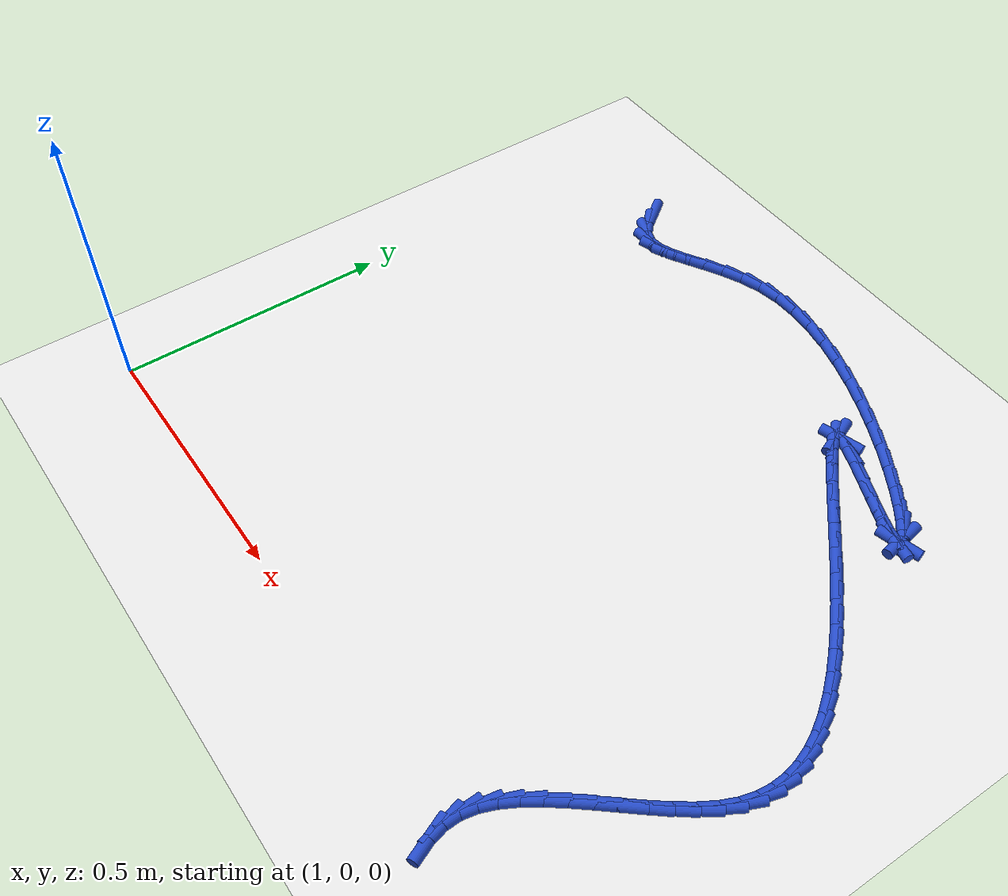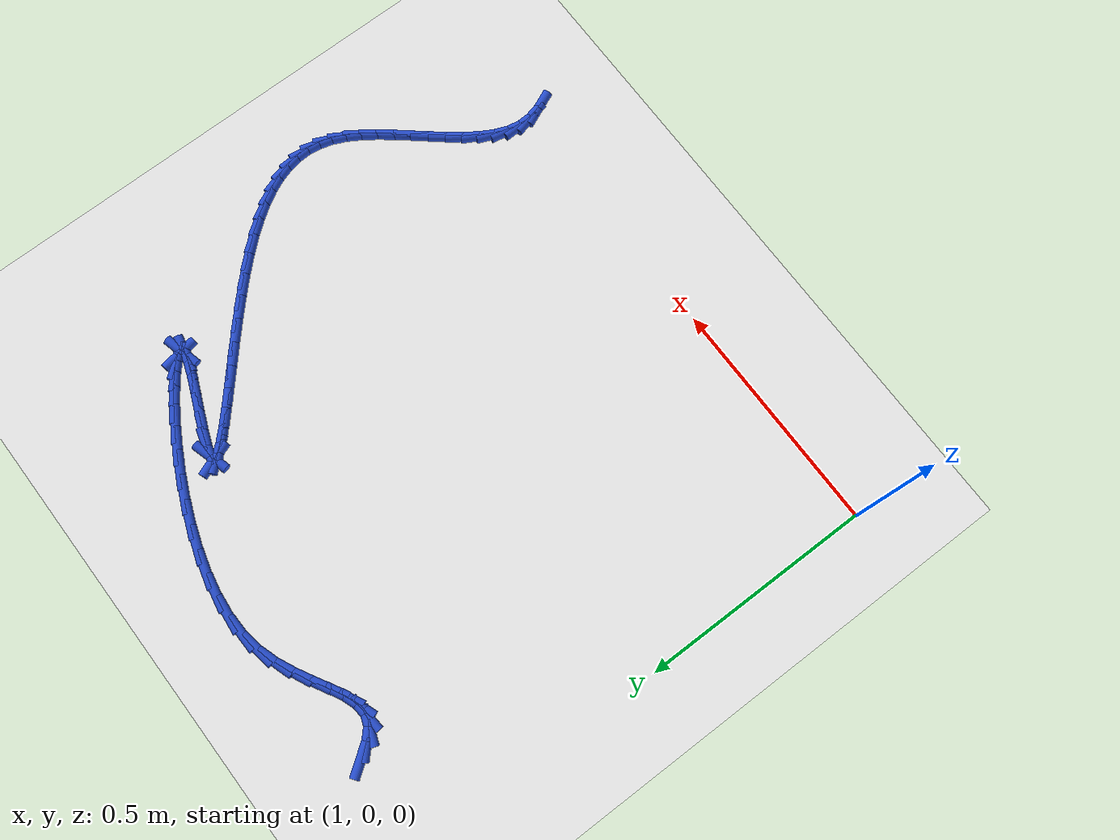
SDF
<sdf version="1.6">
 <world name="default">
  <model name="ground_plane">
   <static>1</static>
   <link name="link">
    <collision name="collision">
     <geometry><plane><normal>0 0 1</normal><size>100 100</size></plane></geometry>
     <surface><friction><ode><mu>100</mu><mu2>50</mu2></ode></friction></surface>
    </collision>
    <visual name="visual">
     <cast_shadows>0</cast_shadows>
     <geometry><plane><normal>0 0 1</normal><size>100 100</size></plane></geometry>
     <material>
      <script><uri>file://media/materials/scripts/gazebo.material</uri><name>Gazebo/WhiteGlow</name></script>
     </material>
    </visual>
   </link>
  </model>
  <model name="line">
   <link name="link_67">
    <pose>1.2067611078545082 1.033358123989123 0.01 0 1.57 -0.9465445864385512</pose>
    <collision name="collision">
     <geometry><cylinder><radius>0.01</radius><length>0.08</length></cylinder></geometry>
    </collision>
    <visual name="visual">
     <material>
      <script><name>Gazebo/Blue</name><uri>file://media/materials/scripts/gazebo.material</uri></script>
     </material>
     <geometry><cylinder><radius>0.01</radius><length>0.08</length></cylinder></geometry>
    </visual>
   </link>
   <link name="link_68">
    <pose>1.225858690586729 1.0068464915648403 0.01 0 1.57 -0.7600534953009594</pose>
    <collision name="collision">
     <geometry><cylinder><radius>0.01</radius><length>0.08</length></cylinder></geometry>
    </collision>
    <visual name="visual">
     <material>
      <script><name>Gazebo/Blue</name><uri>file://media/materials/scripts/gazebo.material</uri></script>
     </material>
     <geometry><cylinder><radius>0.01</radius><length>0.08</length></cylinder></geometry>
    </visual>
   </link>
   <link name="link_69">
    <pose>1.2458282600996473 0.987864351634463 0.01 0 1.57 -0.3537460817427655</pose>
    <collision name="collision">
     <geometry><cylinder><radius>0.01</radius><length>0.08</length></cylinder></geometry>
    </collision>
    <visual name="visual">
     <material>
      <script><name>Gazebo/Blue</name><uri>file://media/materials/scripts/gazebo.material</uri></script>
     </material>
     <geometry><cylinder><radius>0.01</radius><length>0.08</length></cylinder></geometry>
    </visual>
   </link>
   <link name="link_70">
    <pose>1.2675772241700207 0.9798329037707363 0.01 0 1.57 0.0798149576238006</pose>
    <collision name="collision">
     <geometry><cylinder><radius>0.01</radius><length>0.08</length></cylinder></geometry>
    </collision>
    <visual name="visual">
     <material>
      <script><name>Gazebo/Blue</name><uri>file://media/materials/scripts/gazebo.material</uri></script>
     </material>
     <geometry><cylinder><radius>0.01</radius><length>0.08</length></cylinder></geometry>
    </visual>
   </link>
   <link name="link_71">
    <pose>1.2914318188066443 0.9817409105588127 0.01 0 1.57 0.3502315399643494</pose>
    <collision name="collision">
     <geometry><cylinder><radius>0.01</radius><length>0.08</length></cylinder></geometry>
    </collision>
    <visual name="visual">
     <material>
      <script><name>Gazebo/Blue</name><uri>file://media/materials/scripts/gazebo.material</uri></script>
     </material>
     <geometry><cylinder><radius>0.01</radius><length>0.08</length></cylinder></geometry>
    </visual>
   </link>
   <link name="link_72">
    <pose>1.3175483385461255 0.9912810377867015 0.01 0 1.57 0.48025554968265743</pose>
    <collision name="collision">
     <geometry><cylinder><radius>0.01</radius><length>0.08</length></cylinder></geometry>
    </collision>
    <visual name="visual">
     <material>
      <script><name>Gazebo/Blue</name><uri>file://media/materials/scripts/gazebo.material</uri></script>
     </material>
     <geometry><cylinder><radius>0.01</radius><length>0.08</length></cylinder></geometry>
    </visual>
   </link>
   <link name="link_73">
    <pose>1.3460830569537183 1.0061457912996596 0.01 0 1.57 0.5216917624543608</pose>
    <collision name="collision">
     <geometry><cylinder><radius>0.01</radius><length>0.08</length></cylinder></geometry>
    </collision>
    <visual name="visual">
     <material>
      <script><name>Gazebo/Blue</name><uri>file://media/materials/scripts/gazebo.material</uri></script>
     </material>
     <geometry><cylinder><radius>0.01</radius><length>0.08</length></cylinder></geometry>
    </visual>
   </link>
   <link name="link_74">
    <pose>1.3771922475946734 1.024027676942943 0.01 0 1.57 0.5023793213527683</pose>
    <collision name="collision">
     <geometry><cylinder><radius>0.01</radius><length>0.08</length></cylinder></geometry>
    </collision>
    <visual name="visual">
     <material>
      <script><name>Gazebo/Blue</name><uri>file://media/materials/scripts/gazebo.material</uri></script>
     </material>
     <geometry><cylinder><radius>0.01</radius><length>0.08</length></cylinder></geometry>
    </visual>
   </link>
   <link name="link_75">
    <pose>1.411032184034244 1.042619200561809 0.01 0 1.57 0.43336726780103724</pose>
    <collision name="collision">
     <geometry><cylinder><radius>0.01</radius><length>0.08</length></cylinder></geometry>
    </collision>
    <visual name="visual">
     <material>
      <script><name>Gazebo/Blue</name><uri>file://media/materials/scripts/gazebo.material</uri></script>
     </material>
     <geometry><cylinder><radius>0.01</radius><length>0.08</length></cylinder></geometry>
    </visual>
   </link>
   <link name="link_76">
    <pose>1.4477591398376823 1.059612868001513 0.01 0 1.57 0.3179341001916274</pose>
    <collision name="collision">
     <geometry><cylinder><radius>0.01</radius><length>0.08</length></cylinder></geometry>
    </collision>
    <visual name="visual">
     <material>
      <script><name>Gazebo/Blue</name><uri>file://media/materials/scripts/gazebo.material</uri></script>
     </material>
     <geometry><cylinder><radius>0.01</radius><length>0.08</length></cylinder></geometry>
    </visual>
   </link>
   <link name="link_77">
    <pose>1.4875293885702408 1.0727011851073125 0.01 0 1.57 0.1632786894948163</pose>
    <collision name="collision">
     <geometry><cylinder><radius>0.01</radius><length>0.08</length></cylinder></geometry>
    </collision>
    <visual name="visual">
     <material>
      <script><name>Gazebo/Blue</name><uri>file://media/materials/scripts/gazebo.material</uri></script>
     </material>
     <geometry><cylinder><radius>0.01</radius><length>0.08</length></cylinder></geometry>
    </visual>
   </link>
   <link name="link_78">
    <pose>1.5304401018681406 1.0797705247820657 0.01 0 1.57 0.017157606060357683</pose>
    <collision name="collision">
     <geometry><cylinder><radius>0.01</radius><length>0.08</length></cylinder></geometry>
    </collision>
    <visual name="visual">
     <material>
      <script><name>Gazebo/Blue</name><uri>file://media/materials/scripts/gazebo.material</uri></script>
     </material>
     <geometry><cylinder><radius>0.01</radius><length>0.08</length></cylinder></geometry>
    </visual>
   </link>
   <link name="link_79">
    <pose>1.5760258408252927 1.080552743692002 0.01 0 1.57 -0.09973049262688012</pose>
    <collision name="collision">
     <geometry><cylinder><radius>0.01</radius><length>0.08</length></cylinder></geometry>
    </collision>
    <visual name="visual">
     <material>
      <script><name>Gazebo/Blue</name><uri>file://media/materials/scripts/gazebo.material</uri></script>
     </material>
     <geometry><cylinder><radius>0.01</radius><length>0.08</length></cylinder></geometry>
    </visual>
   </link>
   <link name="link_80">
    <pose>1.6235096949201488 1.0758013924921106 0.01 0 1.57 -0.1934394493840396</pose>
    <collision name="collision">
     <geometry><cylinder><radius>0.01</radius><length>0.08</length></cylinder></geometry>
    </collision>
    <visual name="visual">
     <material>
      <script><name>Gazebo/Blue</name><uri>file://media/materials/scripts/gazebo.material</uri></script>
     </material>
     <geometry><cylinder><radius>0.01</radius><length>0.08</length></cylinder></geometry>
    </visual>
   </link>
   <link name="link_81">
    <pose>1.6721114529713472 1.0662808487125188 0.01 0 1.57 -0.2696387362456919</pose>
    <collision name="collision">
     <geometry><cylinder><radius>0.01</radius><length>0.08</length></cylinder></geometry>
    </collision>
    <visual name="visual">
     <material>
      <script><name>Gazebo/Blue</name><uri>file://media/materials/scripts/gazebo.material</uri></script>
     </material>
     <geometry><cylinder><radius>0.01</radius><length>0.08</length></cylinder></geometry>
    </visual>
   </link>
   <link name="link_82">
    <pose>1.7210509037975263 1.052755489883352 0.01 0 1.57 -0.3328464531535941</pose>
    <collision name="collision">
     <geometry><cylinder><radius>0.01</radius><length>0.08</length></cylinder></geometry>
    </collision>
    <visual name="visual">
     <material>
      <script><name>Gazebo/Blue</name><uri>file://media/materials/scripts/gazebo.material</uri></script>
     </material>
     <geometry><cylinder><radius>0.01</radius><length>0.08</length></cylinder></geometry>
    </visual>
   </link>
   <link name="link_83">
    <pose>1.7695478362173225 1.0359896935347366 0.01 0 1.57 -0.38654904492334824</pose>
    <collision name="collision">
     <geometry><cylinder><radius>0.01</radius><length>0.08</length></cylinder></geometry>
    </collision>
    <visual name="visual">
     <material>
      <script><name>Gazebo/Blue</name><uri>file://media/materials/scripts/gazebo.material</uri></script>
     </material>
     <geometry><cylinder><radius>0.01</radius><length>0.08</length></cylinder></geometry>
    </visual>
   </link>
   <link name="link_84">
    <pose>1.816822039049374 1.0167478371967995 0.01 0 1.57 -0.43348363728287115</pose>
    <collision name="collision">
     <geometry><cylinder><radius>0.01</radius><length>0.08</length></cylinder></geometry>
    </collision>
    <visual name="visual">
     <material>
      <script><name>Gazebo/Blue</name><uri>file://media/materials/scripts/gazebo.material</uri></script>
     </material>
     <geometry><cylinder><radius>0.01</radius><length>0.08</length></cylinder></geometry>
    </visual>
   </link>
   <link name="link_85">
    <pose>1.862093301112319 0.9957942983996669 0.01 0 1.57 -0.47593753497241514</pose>
    <collision name="collision">
     <geometry><cylinder><radius>0.01</radius><length>0.08</length></cylinder></geometry>
    </collision>
    <visual name="visual">
     <material>
      <script><name>Gazebo/Blue</name><uri>file://media/materials/scripts/gazebo.material</uri></script>
     </material>
     <geometry><cylinder><radius>0.01</radius><length>0.08</length></cylinder></geometry>
    </visual>
   </link>
   <link name="link_86">
    <pose>1.9045814112247956 0.9738934546734649 0.01 0 1.57 -0.5160625197754991</pose>
    <collision name="collision">
     <geometry><cylinder><radius>0.01</radius><length>0.08</length></cylinder></geometry>
    </collision>
    <visual name="visual">
     <material>
      <script><name>Gazebo/Blue</name><uri>file://media/materials/scripts/gazebo.material</uri></script>
     </material>
     <geometry><cylinder><radius>0.01</radius><length>0.08</length></cylinder></geometry>
    </visual>
   </link>
   <link name="link_87">
    <pose>1.943506158205442 0.9518096835483196 0.01 0 1.57 -0.5562896226902618</pose>
    <collision name="collision">
     <geometry><cylinder><radius>0.01</radius><length>0.08</length></cylinder></geometry>
    </collision>
    <visual name="visual">
     <material>
      <script><name>Gazebo/Blue</name><uri>file://media/materials/scripts/gazebo.material</uri></script>
     </material>
     <geometry><cylinder><radius>0.01</radius><length>0.08</length></cylinder></geometry>
    </visual>
   </link>
   <link name="link_88">
    <pose>1.9780873308728955 0.9303073625543583 0.01 0 1.57 -0.6000834849711446</pose>
    <collision name="collision">
     <geometry><cylinder><radius>0.01</radius><length>0.08</length></cylinder></geometry>
    </collision>
    <visual name="visual">
     <material>
      <script><name>Gazebo/Blue</name><uri>file://media/materials/scripts/gazebo.material</uri></script>
     </material>
     <geometry><cylinder><radius>0.01</radius><length>0.08</length></cylinder></geometry>
    </visual>
   </link>
   <link name="link_89">
    <pose>2.0075447180457937 0.9101508692217067 0.01 0 1.57 -0.6537801948910908</pose>
    <collision name="collision">
     <geometry><cylinder><radius>0.01</radius><length>0.08</length></cylinder></geometry>
    </collision>
    <visual name="visual">
     <material>
      <script><name>Gazebo/Blue</name><uri>file://media/materials/scripts/gazebo.material</uri></script>
     </material>
     <geometry><cylinder><radius>0.01</radius><length>0.08</length></cylinder></geometry>
    </visual>
   </link>
   <link name="link_90">
    <pose>2.0310981085427753 0.8921045810804913 0.01 0 1.57 -0.7324691755194301</pose>
    <collision name="collision">
     <geometry><cylinder><radius>0.01</radius><length>0.08</length></cylinder></geometry>
    </collision>
    <visual name="visual">
     <material>
      <script><name>Gazebo/Blue</name><uri>file://media/materials/scripts/gazebo.material</uri></script>
     </material>
     <geometry><cylinder><radius>0.01</radius><length>0.08</length></cylinder></geometry>
    </visual>
   </link>
   <link name="link_91">
    <pose>2.047967291182478 0.8769328756608381 0.01 0 1.57 -0.8866852633292297</pose>
    <collision name="collision">
     <geometry><cylinder><radius>0.01</radius><length>0.08</length></cylinder></geometry>
    </collision>
    <visual name="visual">
     <material>
      <script><name>Gazebo/Blue</name><uri>file://media/materials/scripts/gazebo.material</uri></script>
     </material>
     <geometry><cylinder><radius>0.01</radius><length>0.08</length></cylinder></geometry>
    </visual>
   </link>
   <link name="link_92">
    <pose>2.0573720547835395 0.8654001304928742 0.01 0 1.57 -1.4094851415332712</pose>
    <collision name="collision">
     <geometry><cylinder><radius>0.01</radius><length>0.08</length></cylinder></geometry>
    </collision>
    <visual name="visual">
     <material>
      <script><name>Gazebo/Blue</name><uri>file://media/materials/scripts/gazebo.material</uri></script>
     </material>
     <geometry><cylinder><radius>0.01</radius><length>0.08</length></cylinder></geometry>
    </visual>
   </link>
   <link name="link_93">
    <pose>2.0585321881645973 0.8582707231067255 0.01 0 1.57 0.24444187556262414</pose>
    <collision name="collision">
     <geometry><cylinder><radius>0.01</radius><length>0.08</length></cylinder></geometry>
    </collision>
    <visual name="visual">
     <material>
      <script><name>Gazebo/Blue</name><uri>file://media/materials/scripts/gazebo.material</uri></script>
     </material>
     <geometry><cylinder><radius>0.01</radius><length>0.08</length></cylinder></geometry>
    </visual>
   </link>
   <link name="link_94">
    <pose>2.0506674801442903 0.8563090310325188 0.01 0 1.57 -0.22102917914361375</pose>
    <collision name="collision">
     <geometry><cylinder><radius>0.01</radius><length>0.08</length></cylinder></geometry>
    </collision>
    <visual name="visual">
     <material>
      <script><name>Gazebo/Blue</name><uri>file://media/materials/scripts/gazebo.material</uri></script>
     </material>
     <geometry><cylinder><radius>0.01</radius><length>0.08</length></cylinder></geometry>
    </visual>
   </link>
   <link name="link_95">
    <pose>2.0329977195453632 0.8602794317975283 0.01 0 1.57 -0.3529485117211044</pose>
    <collision name="collision">
     <geometry><cylinder><radius>0.01</radius><length>0.08</length></cylinder></geometry>
    </collision>
    <visual name="visual">
     <material>
      <script><name>Gazebo/Blue</name><uri>file://media/materials/scripts/gazebo.material</uri></script>
     </material>
     <geometry><cylinder><radius>0.01</radius><length>0.08</length></cylinder></geometry>
    </visual>
   </link>
   <link name="link_96">
    <pose>2.005536131628062 0.8703955528686829 0.01 0 1.57 -0.39685641079395584</pose>
    <collision name="collision">
     <geometry><cylinder><radius>0.01</radius><length>0.08</length></cylinder></geometry>
    </collision>
    <visual name="visual">
     <material>
      <script><name>Gazebo/Blue</name><uri>file://media/materials/scripts/gazebo.material</uri></script>
     </material>
     <geometry><cylinder><radius>0.01</radius><length>0.08</length></cylinder></geometry>
    </visual>
   </link>
   <link name="link_97">
    <pose>1.9714532305381616 0.8846794447168798 0.01 0 1.57 -0.4090068537105748</pose>
    <collision name="collision">
     <geometry><cylinder><radius>0.01</radius><length>0.08</length></cylinder></geometry>
    </collision>
    <visual name="visual">
     <material>
      <script><name>Gazebo/Blue</name><uri>file://media/materials/scripts/gazebo.material</uri></script>
     </material>
     <geometry><cylinder><radius>0.01</radius><length>0.08</length></cylinder></geometry>
    </visual>
   </link>
   <link name="link_98">
    <pose>1.9347047597378095 0.9006081045826113 0.01 0 1.57 -0.4014083073037634</pose>
    <collision name="collision">
     <geometry><cylinder><radius>0.01</radius><length>0.08</length></cylinder></geometry>
    </collision>
    <visual name="visual">
     <material>
      <script><name>Gazebo/Blue</name><uri>file://media/materials/scripts/gazebo.material</uri></script>
     </material>
     <geometry><cylinder><radius>0.01</radius><length>0.08</length></cylinder></geometry>
    </visual>
   </link>
   <link name="link_99">
    <pose>1.8992464626891585 0.915658529706371 0.01 0 1.57 -0.3680109381897119</pose>
    <collision name="collision">
     <geometry><cylinder><radius>0.01</radius><length>0.08</length></cylinder></geometry>
    </collision>
    <visual name="visual">
     <material>
      <script><name>Gazebo/Blue</name><uri>file://media/materials/scripts/gazebo.material</uri></script>
     </material>
     <geometry><cylinder><radius>0.01</radius><length>0.08</length></cylinder></geometry>
    </visual>
   </link>
   <link name="link_100">
    <pose>1.8690340828543561 0.927307717328651 0.01 0 1.57 -0.2660195151744341</pose>
    <collision name="collision">
     <geometry><cylinder><radius>0.01</radius><length>0.08</length></cylinder></geometry>
    </collision>
    <visual name="visual">
     <material>
      <script><name>Gazebo/Blue</name><uri>file://media/materials/scripts/gazebo.material</uri></script>
     </material>
     <geometry><cylinder><radius>0.01</radius><length>0.08</length></cylinder></geometry>
    </visual>
   </link>
   <link name="link_101">
    <pose>1.8480233636955532 0.9330326646899436 0.01 0 1.57 0.2801031239207087</pose>
    <collision name="collision">
     <geometry><cylinder><radius>0.01</radius><length>0.08</length></cylinder></geometry>
    </collision>
    <visual name="visual">
     <material>
      <script><name>Gazebo/Blue</name><uri>file://media/materials/scripts/gazebo.material</uri></script>
     </material>
     <geometry><cylinder><radius>0.01</radius><length>0.08</length></cylinder></geometry>
    </visual>
   </link>
   <link name="link_102">
    <pose>1.8396658897334848 0.9306285037520513 0.01 0 1.57 -1.2015607068183103</pose>
    <collision name="collision">
     <geometry><cylinder><radius>0.01</radius><length>0.08</length></cylinder></geometry>
    </collision>
    <visual name="visual">
     <material>
      <script><name>Gazebo/Blue</name><uri>file://media/materials/scripts/gazebo.material</uri></script>
     </material>
     <geometry><cylinder><radius>0.01</radius><length>0.08</length></cylinder></geometry>
    </visual>
   </link>
   <link name="link_103">
    <pose>1.8436849034186529 0.9202430274493812 0.01 0 1.57 -0.8711445451062044</pose>
    <collision name="collision">
     <geometry><cylinder><radius>0.01</radius><length>0.08</length></cylinder></geometry>
    </collision>
    <visual name="visual">
     <material>
      <script><name>Gazebo/Blue</name><uri>file://media/materials/scripts/gazebo.material</uri></script>
     </material>
     <geometry><cylinder><radius>0.01</radius><length>0.08</length></cylinder></geometry>
    </visual>
   </link>
   <link name="link_104">
    <pose>1.8581316958076495 0.9030790646326948 0.01 0 1.57 -0.7813825399751269</pose>
    <collision name="collision">
     <geometry><cylinder><radius>0.01</radius><length>0.08</length></cylinder></geometry>
    </collision>
    <visual name="visual">
     <material>
      <script><name>Gazebo/Blue</name><uri>file://media/materials/scripts/gazebo.material</uri></script>
     </material>
     <geometry><cylinder><radius>0.01</radius><length>0.08</length></cylinder></geometry>
    </visual>
   </link>
   <link name="link_105">
    <pose>1.8810496521423157 0.880344432885405 0.01 0 1.57 -0.744115724558868</pose>
    <collision name="collision">
     <geometry><cylinder><radius>0.01</radius><length>0.08</length></cylinder></geometry>
    </collision>
    <visual name="visual">
     <material>
      <script><name>Gazebo/Blue</name><uri>file://media/materials/scripts/gazebo.material</uri></script>
     </material>
     <geometry><cylinder><radius>0.01</radius><length>0.08</length></cylinder></geometry>
    </visual>
   </link>
   <link name="link_106">
    <pose>1.9104821576644944 0.8532469497909241 0.01 0 1.57 -0.7272795196205392</pose>
    <collision name="collision">
     <geometry><cylinder><radius>0.01</radius><length>0.08</length></cylinder></geometry>
    </collision>
    <visual name="visual">
     <material>
      <script><name>Gazebo/Blue</name><uri>file://media/materials/scripts/gazebo.material</uri></script>
     </material>
     <geometry><cylinder><radius>0.01</radius><length>0.08</length></cylinder></geometry>
    </visual>
   </link>
   <link name="link_107">
    <pose>1.944472597616027 0.8229944329326642 0.01 0 1.57 -0.721639211436359</pose>
    <collision name="collision">
     <geometry><cylinder><radius>0.01</radius><length>0.08</length></cylinder></geometry>
    </collision>
    <visual name="visual">
     <material>
      <script><name>Gazebo/Blue</name><uri>file://media/materials/scripts/gazebo.material</uri></script>
     </material>
     <geometry><cylinder><radius>0.01</radius><length>0.08</length></cylinder></geometry>
    </visual>
   </link>
   <link name="link_108">
    <pose>1.9810643572387545 0.790794699894038 0.01 0 1.57 -0.7242376804115852</pose>
    <collision name="collision">
     <geometry><cylinder><radius>0.01</radius><length>0.08</length></cylinder></geometry>
    </collision>
    <visual name="visual">
     <material>
      <script><name>Gazebo/Blue</name><uri>file://media/materials/scripts/gazebo.material</uri></script>
     </material>
     <geometry><cylinder><radius>0.01</radius><length>0.08</length></cylinder></geometry>
    </visual>
   </link>
   <link name="link_109">
    <pose>2.0183008217745195 0.7578555682584567 0.01 0 1.57 -0.7347921937396783</pose>
    <collision name="collision">
     <geometry><cylinder><radius>0.01</radius><length>0.08</length></cylinder></geometry>
    </collision>
    <visual name="visual">
     <material>
      <script><name>Gazebo/Blue</name><uri>file://media/materials/scripts/gazebo.material</uri></script>
     </material>
     <geometry><cylinder><radius>0.01</radius><length>0.08</length></cylinder></geometry>
    </visual>
   </link>
   <link name="link_110">
    <pose>2.0542823744322067 0.7253431798769426 0.01 0 1.57 -0.7523948803820598</pose>
    <collision name="collision">
     <geometry><cylinder><radius>0.01</radius><length>0.08</length></cylinder></geometry>
    </collision>
    <visual name="visual">
     <material>
      <script><name>Gazebo/Blue</name><uri>file://media/materials/scripts/gazebo.material</uri></script>
     </material>
     <geometry><cylinder><radius>0.01</radius><length>0.08</length></cylinder></geometry>
    </visual>
   </link>
   <link name="link_111">
    <pose>2.0880405292414888 0.6937428530392217 0.01 0 1.57 -0.7762595078056281</pose>
    <collision name="collision">
     <geometry><cylinder><radius>0.01</radius><length>0.08</length></cylinder></geometry>
    </collision>
    <visual name="visual">
     <material>
      <script><name>Gazebo/Blue</name><uri>file://media/materials/scripts/gazebo.material</uri></script>
     </material>
     <geometry><cylinder><radius>0.01</radius><length>0.08</length></cylinder></geometry>
    </visual>
   </link>
   <link name="link_112">
    <pose>2.1193658544161895 0.6629849013446656 0.01 0 1.57 -0.8074746978622448</pose>
    <collision name="collision">
     <geometry><cylinder><radius>0.01</radius><length>0.08</length></cylinder></geometry>
    </collision>
    <visual name="visual">
     <material>
      <script><name>Gazebo/Blue</name><uri>file://media/materials/scripts/gazebo.material</uri></script>
     </material>
     <geometry><cylinder><radius>0.01</radius><length>0.08</length></cylinder></geometry>
    </visual>
   </link>
   <link name="link_113">
    <pose>2.148071049773217 0.6329834562230834 0.01 0 1.57 -0.847478896991998</pose>
    <collision name="collision">
     <geometry><cylinder><radius>0.01</radius><length>0.08</length></cylinder></geometry>
    </collision>
    <visual name="visual">
     <material>
      <script><name>Gazebo/Blue</name><uri>file://media/materials/scripts/gazebo.material</uri></script>
     </material>
     <geometry><cylinder><radius>0.01</radius><length>0.08</length></cylinder></geometry>
    </visual>
   </link>
   <link name="link_114">
    <pose>2.1739688151294763 0.6036526491042846 0.01 0 1.57 -0.8980481168767065</pose>
    <collision name="collision">
     <geometry><cylinder><radius>0.01</radius><length>0.08</length></cylinder></geometry>
    </collision>
    <visual name="visual">
     <material>
      <script><name>Gazebo/Blue</name><uri>file://media/materials/scripts/gazebo.material</uri></script>
     </material>
     <geometry><cylinder><radius>0.01</radius><length>0.08</length></cylinder></geometry>
    </visual>
   </link>
   <link name="link_115">
    <pose>2.1968718503018767 0.5749066114180786 0.01 0 1.57 -0.9613067160228799</pose>
    <collision name="collision">
     <geometry><cylinder><radius>0.01</radius><length>0.08</length></cylinder></geometry>
    </collision>
    <visual name="visual">
     <material>
      <script><name>Gazebo/Blue</name><uri>file://media/materials/scripts/gazebo.material</uri></script>
     </material>
     <geometry><cylinder><radius>0.01</radius><length>0.08</length></cylinder></geometry>
    </visual>
   </link>
   <link name="link_116">
    <pose>2.216592855107324 0.5466594745942738 0.01 0 1.57 -1.0396417348257783</pose>
    <collision name="collision">
     <geometry><cylinder><radius>0.01</radius><length>0.08</length></cylinder></geometry>
    </collision>
    <visual name="visual">
     <material>
      <script><name>Gazebo/Blue</name><uri>file://media/materials/scripts/gazebo.material</uri></script>
     </material>
     <geometry><cylinder><radius>0.01</radius><length>0.08</length></cylinder></geometry>
    </visual>
   </link>
   <link name="link_117">
    <pose>2.232944529362725 0.5188253700626787 0.01 0 1.57 -1.135409649760142</pose>
    <collision name="collision">
     <geometry><cylinder><radius>0.01</radius><length>0.08</length></cylinder></geometry>
    </collision>
    <visual name="visual">
     <material>
      <script><name>Gazebo/Blue</name><uri>file://media/materials/scripts/gazebo.material</uri></script>
     </material>
     <geometry><cylinder><radius>0.01</radius><length>0.08</length></cylinder></geometry>
    </visual>
   </link>
   <link name="link_118">
    <pose>2.245739572884987 0.4913184292531038 0.01 0 1.57 -1.250281988067868</pose>
    <collision name="collision">
     <geometry><cylinder><radius>0.01</radius><length>0.08</length></cylinder></geometry>
    </collision>
    <visual name="visual">
     <material>
      <script><name>Gazebo/Blue</name><uri>file://media/materials/scripts/gazebo.material</uri></script>
     </material>
     <geometry><cylinder><radius>0.01</radius><length>0.08</length></cylinder></geometry>
    </visual>
   </link>
   <link name="link_119">
    <pose>2.2547906854910176 0.46405278359535745 0.01 0 1.57 -1.3841403913518013</pose>
    <collision name="collision">
     <geometry><cylinder><radius>0.01</radius><length>0.08</length></cylinder></geometry>
    </collision>
    <visual name="visual">
     <material>
      <script><name>Gazebo/Blue</name><uri>file://media/materials/scripts/gazebo.material</uri></script>
     </material>
     <geometry><cylinder><radius>0.01</radius><length>0.08</length></cylinder></geometry>
    </visual>
   </link>
   <link name="link_120">
    <pose>2.2599105669977226 0.43694256451924857 0.01 0 1.57 -1.53378196254658</pose>
    <collision name="collision">
     <geometry><cylinder><radius>0.01</radius><length>0.08</length></cylinder></geometry>
    </collision>
    <visual name="visual">
     <material>
      <script><name>Gazebo/Blue</name><uri>file://media/materials/scripts/gazebo.material</uri></script>
     </material>
     <geometry><cylinder><radius>0.01</radius><length>0.08</length></cylinder></geometry>
    </visual>
   </link>
   <link name="link_121">
    <pose>2.260911917222011 0.40990190345458655 0.01 0 1.57 1.449267685183993</pose>
    <collision name="collision">
     <geometry><cylinder><radius>0.01</radius><length>0.08</length></cylinder></geometry>
    </collision>
    <visual name="visual">
     <material>
      <script><name>Gazebo/Blue</name><uri>file://media/materials/scripts/gazebo.material</uri></script>
     </material>
     <geometry><cylinder><radius>0.01</radius><length>0.08</length></cylinder></geometry>
    </visual>
   </link>
   <link name="link_122">
    <pose>2.2576074359807876 0.38284493183117974 0.01 0 1.57 1.2912084975322835</pose>
    <collision name="collision">
     <geometry><cylinder><radius>0.01</radius><length>0.08</length></cylinder></geometry>
    </collision>
    <visual name="visual">
     <material>
      <script><name>Gazebo/Blue</name><uri>file://media/materials/scripts/gazebo.material</uri></script>
     </material>
     <geometry><cylinder><radius>0.01</radius><length>0.08</length></cylinder></geometry>
    </visual>
   </link>
   <link name="link_123">
    <pose>2.2498098230909602 0.35568578107883797 0.01 0 1.57 1.1450297978765434</pose>
    <collision name="collision">
     <geometry><cylinder><radius>0.01</radius><length>0.08</length></cylinder></geometry>
    </collision>
    <visual name="visual">
     <material>
      <script><name>Gazebo/Blue</name><uri>file://media/materials/scripts/gazebo.material</uri></script>
     </material>
     <geometry><cylinder><radius>0.01</radius><length>0.08</length></cylinder></geometry>
    </visual>
   </link>
   <link name="link_124">
    <pose>2.2374120009756524 0.32834811747883474 0.01 0 1.57 1.0327837691851314</pose>
    <collision name="collision">
     <geometry><cylinder><radius>0.01</radius><length>0.08</length></cylinder></geometry>
    </collision>
    <visual name="visual">
     <material>
      <script><name>Gazebo/Blue</name><uri>file://media/materials/scripts/gazebo.material</uri></script>
     </material>
     <geometry><cylinder><radius>0.01</radius><length>0.08</length></cylinder></geometry>
    </visual>
   </link>
   <link name="link_125">
    <pose>2.2209955284341003 0.300837455134012 0.01 0 1.57 0.9562562717982085</pose>
    <collision name="collision">
     <geometry><cylinder><radius>0.01</radius><length>0.08</length></cylinder></geometry>
    </collision>
    <visual name="visual">
     <material>
      <script><name>Gazebo/Blue</name><uri>file://media/materials/scripts/gazebo.material</uri></script>
     </material>
     <geometry><cylinder><radius>0.01</radius><length>0.08</length></cylinder></geometry>
    </visual>
   </link>
   <link name="link_126">
    <pose>2.201492511306774 0.2732009723878433 0.01 0 1.57 0.9075374635228005</pose>
    <collision name="collision">
     <geometry><cylinder><radius>0.01</radius><length>0.08</length></cylinder></geometry>
    </collision>
    <visual name="visual">
     <material>
      <script><name>Gazebo/Blue</name><uri>file://media/materials/scripts/gazebo.material</uri></script>
     </material>
     <geometry><cylinder><radius>0.01</radius><length>0.08</length></cylinder></geometry>
    </visual>
   </link>
   <link name="link_127">
    <pose>2.1798378344572997 0.2454861778843791 0.01 0 1.57 0.8813967219815108</pose>
    <collision name="collision">
     <geometry><cylinder><radius>0.01</radius><length>0.08</length></cylinder></geometry>
    </collision>
    <visual name="visual">
     <material>
      <script><name>Gazebo/Blue</name><uri>file://media/materials/scripts/gazebo.material</uri></script>
     </material>
     <geometry><cylinder><radius>0.01</radius><length>0.08</length></cylinder></geometry>
    </visual>
   </link>
   <link name="link_128">
    <pose>2.1569663827493026 0.2177405802676685 0.01 0 1.57 0.875081267297095</pose>
    <collision name="collision">
     <geometry><cylinder><radius>0.01</radius><length>0.08</length></cylinder></geometry>
    </collision>
    <visual name="visual">
     <material>
      <script><name>Gazebo/Blue</name><uri>file://media/materials/scripts/gazebo.material</uri></script>
     </material>
     <geometry><cylinder><radius>0.01</radius><length>0.08</length></cylinder></geometry>
    </visual>
   </link>
   <link name="link_129">
    <pose>2.1338130410464076 0.19001168818176084 0.01 0 1.57 0.8879836258896833</pose>
    <collision name="collision">
     <geometry><cylinder><radius>0.01</radius><length>0.08</length></cylinder></geometry>
    </collision>
    <visual name="visual">
     <material>
      <script><name>Gazebo/Blue</name><uri>file://media/materials/scripts/gazebo.material</uri></script>
     </material>
     <geometry><cylinder><radius>0.01</radius><length>0.08</length></cylinder></geometry>
    </visual>
   </link>
   <link name="link_130">
    <pose>2.1113126942122404 0.16234701027070583 0.01 0 1.57 0.9215652570599303</pose>
    <collision name="collision">
     <geometry><cylinder><radius>0.01</radius><length>0.08</length></cylinder></geometry>
    </collision>
    <visual name="visual">
     <material>
      <script><name>Gazebo/Blue</name><uri>file://media/materials/scripts/gazebo.material</uri></script>
     </material>
     <geometry><cylinder><radius>0.01</radius><length>0.08</length></cylinder></geometry>
    </visual>
   </link>
   <link name="link_131">
    <pose>2.090400227110426 0.1347940551785524 0.01 0 1.57 0.9795854422959629</pose>
    <collision name="collision">
     <geometry><cylinder><radius>0.01</radius><length>0.08</length></cylinder></geometry>
    </collision>
    <visual name="visual">
     <material>
      <script><name>Gazebo/Blue</name><uri>file://media/materials/scripts/gazebo.material</uri></script>
     </material>
     <geometry><cylinder><radius>0.01</radius><length>0.08</length></cylinder></geometry>
    </visual>
   </link>
   <link name="link_132">
    <pose>2.0720105246045892 0.10740033154935096 0.01 0 1.57 1.0685403507830098</pose>
    <collision name="collision">
     <geometry><cylinder><radius>0.01</radius><length>0.08</length></cylinder></geometry>
    </collision>
    <visual name="visual">
     <material>
      <script><name>Gazebo/Blue</name><uri>file://media/materials/scripts/gazebo.material</uri></script>
     </material>
     <geometry><cylinder><radius>0.01</radius><length>0.08</length></cylinder></geometry>
    </visual>
   </link>
   <link name="link_133">
    <pose>2.0570784715583565 0.08021334802715055 0.01 0 1.57 1.197788560871915</pose>
    <collision name="collision">
     <geometry><cylinder><radius>0.01</radius><length>0.08</length></cylinder></geometry>
    </collision>
    <visual name="visual">
     <material>
      <script><name>Gazebo/Blue</name><uri>file://media/materials/scripts/gazebo.material</uri></script>
     </material>
     <geometry><cylinder><radius>0.01</radius><length>0.08</length></cylinder></geometry>
    </visual>
   </link>
   <link name="link_134">
    <pose>2.0465389528353524 0.05328061325600064 0.01 0 1.57 1.377523690177215</pose>
    <collision name="collision">
     <geometry><cylinder><radius>0.01</radius><length>0.08</length></cylinder></geometry>
    </collision>
    <visual name="visual">
     <material>
      <script><name>Gazebo/Blue</name><uri>file://media/materials/scripts/gazebo.material</uri></script>
     </material>
     <geometry><cylinder><radius>0.01</radius><length>0.08</length></cylinder></geometry>
    </visual>
   </link>
   <link name="link_135">
    <pose>2.0413268532992026 0.026649635879950354 0.01 0 1.57 -1.5395846699006217</pose>
    <collision name="collision">
     <geometry><cylinder><radius>0.01</radius><length>0.08</length></cylinder></geometry>
    </collision>
    <visual name="visual">
     <material>
      <script><name>Gazebo/Blue</name><uri>file://media/materials/scripts/gazebo.material</uri></script>
     </material>
     <geometry><cylinder><radius>0.01</radius><length>0.08</length></cylinder></geometry>
    </visual>
   </link>
   <link name="link_136">
    <pose>2.0421481240867276 0.00034523019350169207 0.01 0 1.57 -1.3293215959806652</pose>
    <collision name="collision">
     <geometry><cylinder><radius>0.01</radius><length>0.08</length></cylinder></geometry>
    </collision>
    <visual name="visual">
     <material>
      <script><name>Gazebo/Blue</name><uri>file://media/materials/scripts/gazebo.material</uri></script>
     </material>
     <geometry><cylinder><radius>0.01</radius><length>0.08</length></cylinder></geometry>
    </visual>
   </link>
   <link name="link_137">
    <pose>2.048567698679254 -0.025720899332705407 0.01 0 1.57 -1.1624576376299667</pose>
    <collision name="collision">
     <geometry><cylinder><radius>0.01</radius><length>0.08</length></cylinder></geometry>
    </collision>
    <visual name="visual">
     <material>
      <script><name>Gazebo/Blue</name><uri>file://media/materials/scripts/gazebo.material</uri></script>
     </material>
     <geometry><cylinder><radius>0.01</radius><length>0.08</length></cylinder></geometry>
    </visual>
   </link>
  </model>
 </world>
</sdf>
